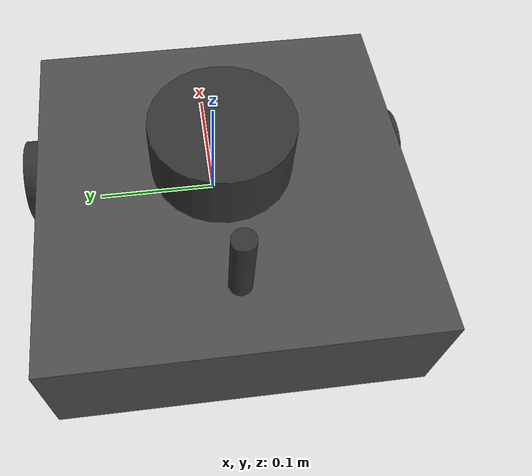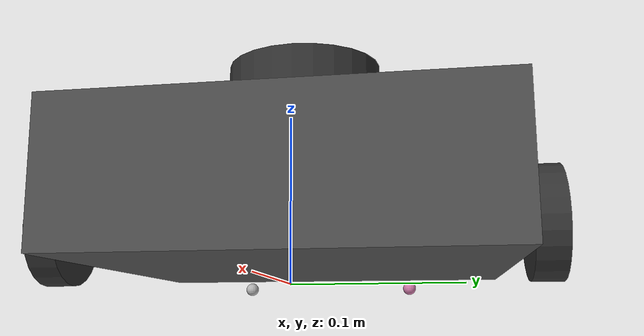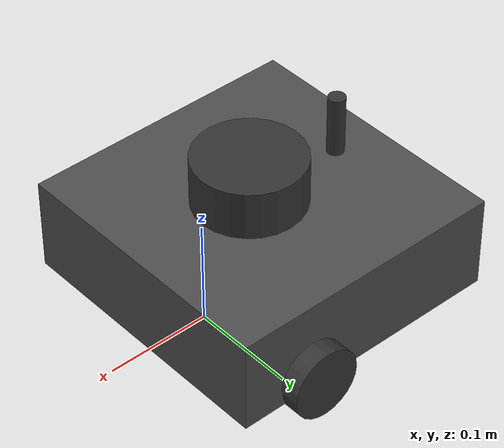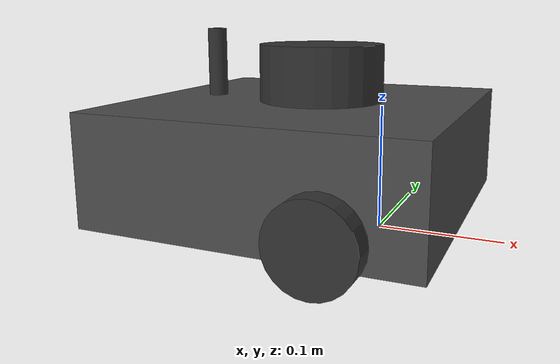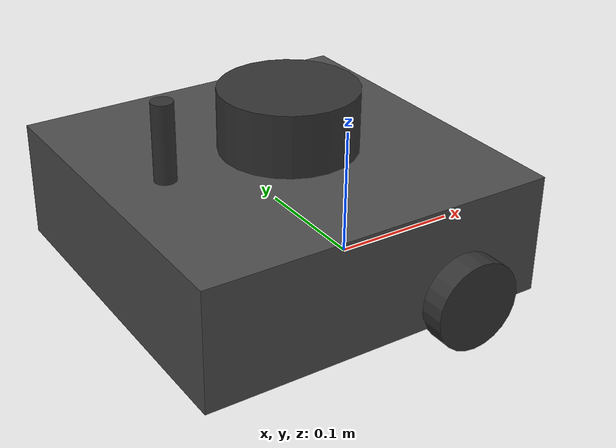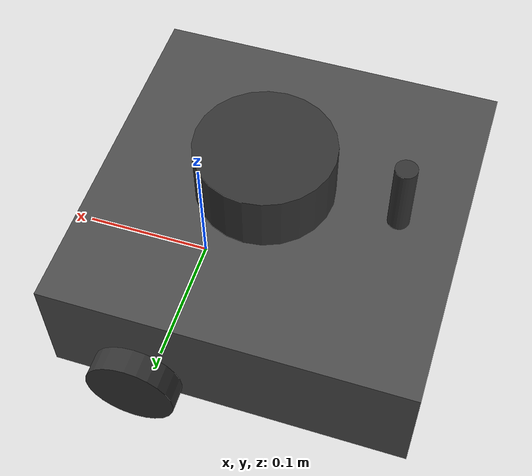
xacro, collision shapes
<?xml version="1.0" ?>
<robot name="tbot_wf" xmlns:xacro="http://ros.org/wiki/xacro">

  <xacro:property name="mesh_base" value="package://turtlebot3_description/meshes/bases/waffle_base.stl"/>
  <xacro:property name="mesh_wheel_l" value="package://turtlebot3_description/meshes/wheels/left_tire.stl"/>
  <xacro:property name="mesh_wheel_r" value="package://turtlebot3_description/meshes/wheels/right_tire.stl"/>
  <xacro:property name="mesh_sensor_lds" value="package://turtlebot3_description/meshes/sensors/lds.stl"/>

  <link name="base_footprint"/>

  <joint name="base_joint" type="fixed">
    <parent link="base_footprint"/>
    <child link="base_link"/>
    <origin xyz="0 0 0.010" rpy="0 0 0"/>
  </joint>

  <link name="base_link">
    <visual>
      <origin xyz="-0.064 0 0.0" rpy="0 0 0"/>
      <geometry>
        <mesh filename="${mesh_base}" scale="0.001 0.001 0.001"/>
      </geometry>
      <material name="dark_grey">
        <color rgba="0.3 0.3 0.3 1.0"/>
      </material>
    </visual>

    <collision>
      <origin xyz="-0.064 0 0.048" rpy="0 0 0"/>
      <geometry>
        <box size="0.265 0.265 0.089"/>
      </geometry>
    </collision>

    <inertial>
      <origin xyz="-0.064 0 0.048" rpy="0 0 0"/>
      <mass value="1.3729096e+00"/>
      <inertia ixx="4.2111447e-02" ixy="0" ixz="0"
               iyy="4.2111447e-02" iyz="0"
               izz="7.5254874e-02" />
    </inertial>
  </link>

  <joint name="imu_joint" type="fixed">
    <parent link="base_link"/>
    <child link="imu_link"/>
    <origin xyz="-0.032 0 0.068" rpy="0 0 0"/>
  </joint>

  <link name="imu_link"/>

  <joint name="lidar_joint" type="fixed">
    <parent link="base_link"/>
    <child link="base_scan"/>
    <origin xyz="-0.064 0 0.121" rpy="0 0 0"/>
  </joint>

  <link name="base_scan">
    <visual>
      <origin xyz="0 0 0" rpy="0 0 0"/>
      <geometry>
        <mesh filename="${mesh_sensor_lds}" scale="0.001 0.001 0.001"/>
      </geometry>
      <material name="dark">
        <color rgba="0.2 0.2 0.2 1.0"/>
      </material>
    </visual>

    <collision>
      <origin xyz="0.012 0 -0.010" rpy="0 0 0"/> <geometry>
        <cylinder length="0.055" radius="0.0508"/>
      </geometry>
    </collision>

    <inertial>
      <origin xyz="0.012 0 -0.010" rpy="0 0 0"/>
      <mass value="0.114"/>
      <inertia ixx="0.001" ixy="0.0" ixz="0.0"
               iyy="0.001" iyz="0.0"
               izz="0.001" />
    </inertial>
  </link>

<xacro:macro name="tbot_wheel" params="prefix y_offset mesh_file">
    <joint name="wheel_${prefix}_joint" type="continuous">
      <parent link="base_link"/>
      <child link="wheel_${prefix}_link"/>
      <origin xyz="0.0 ${y_offset} 0.023" rpy="-1.57 0 0"/>
      <axis xyz="0 0 1"/>
    </joint>

    <link name="wheel_${prefix}_link">
      <visual>
        <origin xyz="0 0 0" rpy="1.57 0 0"/>
        <geometry>
          <mesh filename="${mesh_file}" scale="0.001 0.001 0.001"/>
        </geometry>
        <material name="dark"/>
      </visual>

      <collision>
        <origin xyz="0 0 0" rpy="0 0 0"/>
        <geometry>
          <cylinder length="0.018" radius="0.033"/>
        </geometry>
      </collision>

      <inertial>
        <origin xyz="0 0 0" rpy="0 0 0"/>
        <mass value="0.1"/>
        <inertia ixx="1.1175580e-05" ixy="-4.2369783e-11" ixz="-5.9381719e-09"
                 iyy="1.1192413e-05" iyz="-1.4400107e-11"
                 izz="2.0712558e-05" />
      </inertial>
    </link>

    <gazebo reference="wheel_${prefix}_link">
      <mu1>100000.0</mu1>
      <mu2>100000.0</mu2>
      <kp>100000.0</kp>
      <kd>1.0</kd>
      <minDepth>0.001</minDepth>
      <maxVel>0.01</maxVel>
    </gazebo>
  </xacro:macro>

  <xacro:tbot_wheel prefix="left" y_offset="0.144" mesh_file="${mesh_wheel_r}"/>
  <xacro:tbot_wheel prefix="right" y_offset="-0.144" mesh_file="${mesh_wheel_l}"/>

  <xacro:macro name="caster" params="prefix y_offset">
    <joint name="caster_${prefix}_joint" type="fixed">
      <parent link="base_link"/>
      <child link="caster_${prefix}_link"/>
      <origin xyz="-0.177 ${y_offset} -0.004" rpy="-1.57 0 0"/>
    </joint>

    <link name="caster_${prefix}_link">
      <collision>
        <geometry>
          <sphere radius="0.005"/>
        </geometry>
      </collision>
      <inertial>
        <mass value="0.001"/>
        <inertia ixx="0.00001" ixy="0" ixz="0" iyy="0.00001" iyz="0" izz="0.00001"/>
      </inertial>
    </link>

    <gazebo reference="caster_${prefix}_link">
      <mu1>0.1</mu1>
      <mu2>0.1</mu2>
      <kp>100000.0</kp>
      <kd>1.0</kd>
    </gazebo>
  </xacro:macro>

  <xacro:caster prefix="back_left" y_offset="0.064"/>
  <xacro:caster prefix="back_right" y_offset="-0.064"/>

  <joint name="camera_joint" type="fixed">
    <parent link="base_link"/>
    <child link="camera_link"/>
    <origin xyz="0.064 -0.065 0.094" rpy="0 0 0"/>
  </joint>

  <link name="camera_link"/>

  <joint name="camera_depth_rgb_joint" type="fixed">
    <parent link="camera_link"/>
    <child link="camera_depth_rgb_frame"/>
    <origin xyz="0.005 0.018 0.013" rpy="0 0 0"/>
  </joint>

  <link name="camera_depth_rgb_frame">
    <inertial>
      <mass value="0.035"/>
      <inertia ixx="0.001" ixy="0" ixz="0" iyy="0.001" iyz="0" izz="0.001"/>
    </inertial>
  </link>

  <joint name="camera_pole_joint" type="fixed">
    <parent link="base_link"/>
    <child link="camera_pole_link"/>
    <origin xyz="-0.15 0 0.1" rpy="0 0 0"/>
  </joint>

  <link name="camera_pole_link">
    <visual>
      <geometry>
        <cylinder radius="0.008" length="0.1"/>
      </geometry>
      <material name="dark"/>
    </visual>
    <collision>
      <geometry>
        <cylinder radius="0.008" length="0.1"/>
      </geometry>
    </collision>
    <inertial>
      <mass value="0.1"/>
      <inertia ixx="0.001" ixy="0" ixz="0" iyy="0.001" iyz="0" izz="0.0001"/>
    </inertial>
  </link>

  <gazebo>
    <plugin name="tbot_diff_drive" filename="libgazebo_ros_diff_drive.so">
      <ros>
        <remapping>cmd_vel:=tbot_base/cmd_vel</remapping>
      </ros>
      <update_rate>30</update_rate>
      <left_joint>wheel_left_joint</left_joint>
      <right_joint>wheel_right_joint</right_joint>
      <wheel_separation>0.287</wheel_separation>
      <wheel_diameter>0.066</wheel_diameter>
      <max_wheel_torque>20</max_wheel_torque>
      <max_wheel_acceleration>1.0</max_wheel_acceleration>
      <publish_odom>true</publish_odom>
      <publish_odom_tf>true</publish_odom_tf>
      <publish_wheel_tf>false</publish_wheel_tf>
      <odometry_topic>odom</odometry_topic>
      <odometry_frame>odom</odometry_frame>
      <robot_base_frame>base_footprint</robot_base_frame>
    </plugin>
  </gazebo>

  <gazebo>
    <plugin name="tbot_joint_state" filename="libgazebo_ros_joint_state_publisher.so">
      <ros>
        <remapping>~/out:=joint_states</remapping>
      </ros>
      <update_rate>30</update_rate>
      <joint_name>wheel_left_joint</joint_name>
      <joint_name>wheel_right_joint</joint_name>
    </plugin>
  </gazebo>

  <gazebo reference="imu_link">
    <sensor name="tb3_imu" type="imu">
      <always_on>true</always_on>
      <update_rate>200</update_rate>
      <imu>
        <angular_velocity>
          <x><noise type="gaussian"><mean>0.0</mean><stddev>2e-4</stddev></noise></x>
          <y><noise type="gaussian"><mean>0.0</mean><stddev>2e-4</stddev></noise></y>
          <z><noise type="gaussian"><mean>0.0</mean><stddev>2e-4</stddev></noise></z>
        </angular_velocity>
        <linear_acceleration>
          <x><noise type="gaussian"><mean>0.0</mean><stddev>1.7e-2</stddev></noise></x>
          <y><noise type="gaussian"><mean>0.0</mean><stddev>1.7e-2</stddev></noise></y>
          <z><noise type="gaussian"><mean>0.0</mean><stddev>1.7e-2</stddev></noise></z>
        </linear_acceleration>
      </imu>
      <plugin name="tbot_imu" filename="libgazebo_ros_imu_sensor.so">
        <ros>
          <remapping>~/out:=imu</remapping>
        </ros>
      </plugin>
    </sensor>
  </gazebo>

  <gazebo reference="base_scan">
    <sensor name="hls_lfcd_lds" type="ray">
      <always_on>true</always_on>
      <visualize>true</visualize>
      <pose>0 0 0 0 0 0</pose>
      <update_rate>5</update_rate>
      <ray>
        <scan>
          <horizontal>
            <samples>360</samples>
            <resolution>1.000000</resolution>
            <min_angle>0.000000</min_angle>
            <max_angle>6.280000</max_angle>
          </horizontal>
        </scan>
        <range>
          <min>0.120000</min>
          <max>3.5</max>
          <resolution>0.015000</resolution>
        </range>
        <noise>
          <type>gaussian</type>
          <mean>0.0</mean>
          <stddev>0.01</stddev>
        </noise>
      </ray>
      <plugin name="tbot_laserscan" filename="libgazebo_ros_ray_sensor.so">
        <ros>
          <remapping>~/out:=scan</remapping>
        </ros>
        <output_type>sensor_msgs/LaserScan</output_type>
        <frame_name>base_scan</frame_name>
      </plugin>
    </sensor>
  </gazebo>

  <gazebo reference="camera_depth_rgb_frame">
    <sensor name="depth_rgb_camera" type="depth">
      <always_on>true</always_on>
      <visualize>true</visualize>
      <update_rate>30</update_rate>
      <camera name="intel_realsense_r200_depth">
        <horizontal_fov>1.02974</horizontal_fov>
        <image>
          <width>640</width>
          <height>480</height>
          <format>R8G8B8</format>
        </image>
        <clip>
          <near>0.02</near>
          <far>10.0</far>
        </clip>
        <noise>
          <type>gaussian</type>
          <mean>0.0</mean>
          <stddev>0.007</stddev>
        </noise>
      </camera>
      <plugin name="depth_rgb_camera_controller" filename="libgazebo_ros_camera.so">
        <ros></ros>
        <camera_name>camera</camera_name>
        <frame_name>camera_rgb_frame</frame_name>
        <hack_baseline>0.0</hack_baseline>
        <min_depth>0.02</min_depth>
        <max_depth>10.0</max_depth>
      </plugin>
    </sensor>
  </gazebo>

</robot>
